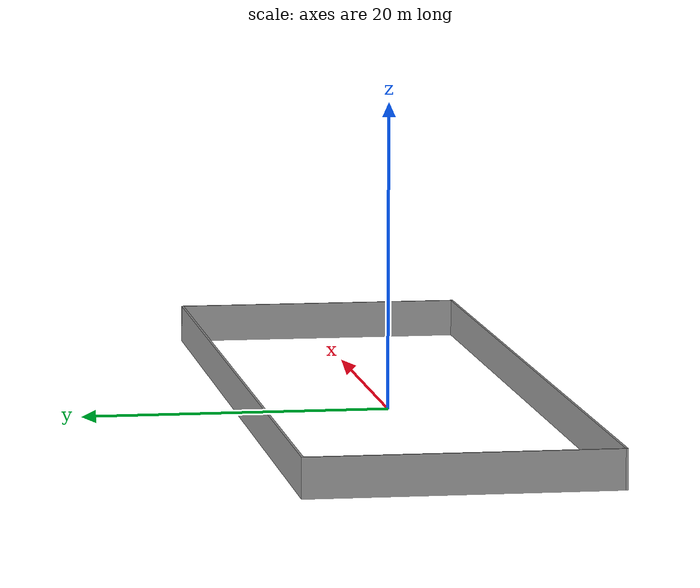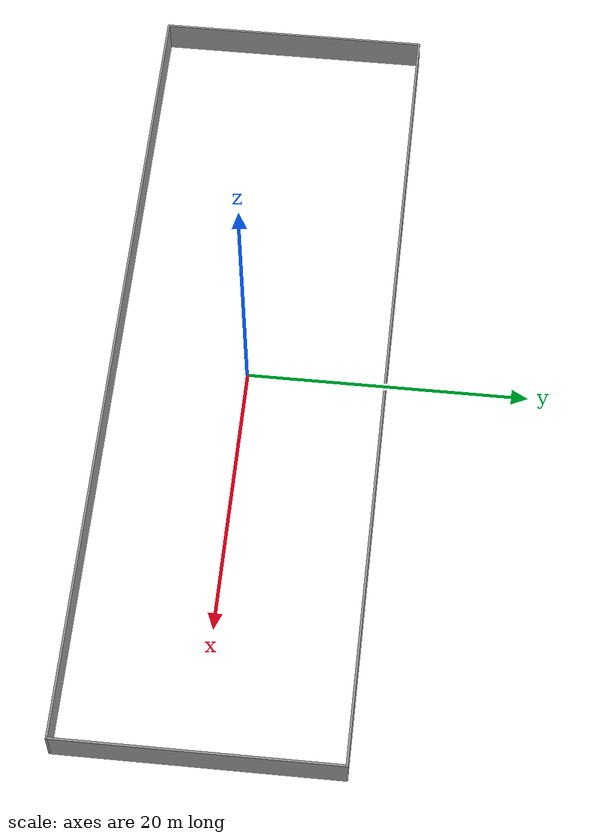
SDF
<?xml version='1.0'?>
<sdf version='1.7'>
  <model name='big_empty'>
    <pose>0.222829 0.216678 0 0 -0 0</pose>
    <link name='Wall_6'>
      <collision name='Wall_6_Collision'>
        <geometry>
          <box>
            <size>59.25 0.15 2.5</size>
          </box>
        </geometry>
        <pose>0 0 1.25 0 -0 0</pose>
      </collision>
      <visual name='Wall_6_Visual'>
        <pose>0 0 1.25 0 -0 0</pose>
        <geometry>
          <box>
            <size>59.25 0.15 2.5</size>
          </box>
        </geometry>
        <material>
          <script>
            <uri>file://media/materials/scripts/gazebo.material</uri>
            <name>Gazebo/Grey</name>
          </script>
          <ambient>1 1 1 1</ambient>
        </material>
        <meta>
          <layer>0</layer>
        </meta>
      </visual>
      <pose>-0 9.675 0 0 -0 0</pose>
    </link>
    <link name='Wall_7'>
      <collision name='Wall_7_Collision'>
        <geometry>
          <box>
            <size>19.5 0.15 2.5</size>
          </box>
        </geometry>
        <pose>0 0 1.25 0 -0 0</pose>
      </collision>
      <visual name='Wall_7_Visual'>
        <pose>0 0 1.25 0 -0 0</pose>
        <geometry>
          <box>
            <size>19.5 0.15 2.5</size>
          </box>
        </geometry>
        <material>
          <script>
            <uri>file://media/materials/scripts/gazebo.material</uri>
            <name>Gazebo/Grey</name>
          </script>
          <ambient>1 1 1 1</ambient>
        </material>
        <meta>
          <layer>0</layer>
        </meta>
      </visual>
      <pose>29.55 0 0 0 -0 -1.5708</pose>
    </link>
    <link name='Wall_8'>
      <collision name='Wall_8_Collision'>
        <geometry>
          <box>
            <size>59.25 0.15 2.5</size>
          </box>
        </geometry>
        <pose>0 0 1.25 0 -0 0</pose>
      </collision>
      <visual name='Wall_8_Visual'>
        <pose>0 0 1.25 0 -0 0</pose>
        <geometry>
          <box>
            <size>59.25 0.15 2.5</size>
          </box>
        </geometry>
        <material>
          <script>
            <uri>file://media/materials/scripts/gazebo.material</uri>
            <name>Gazebo/Grey</name>
          </script>
          <ambient>1 1 1 1</ambient>
        </material>
        <meta>
          <layer>0</layer>
        </meta>
      </visual>
      <pose>-0 -9.675 0 0 -0 3.14159</pose>
    </link>
    <link name='Wall_9'>
      <collision name='Wall_9_Collision'>
        <geometry>
          <box>
            <size>19.5 0.15 2.5</size>
          </box>
        </geometry>
        <pose>0 0 1.25 0 -0 0</pose>
      </collision>
      <visual name='Wall_9_Visual'>
        <pose>0 0 1.25 0 -0 0</pose>
        <geometry>
          <box>
            <size>19.5 0.15 2.5</size>
          </box>
        </geometry>
        <material>
          <script>
            <uri>file://media/materials/scripts/gazebo.material</uri>
            <name>Gazebo/Grey</name>
          </script>
          <ambient>1 1 1 1</ambient>
        </material>
        <meta>
          <layer>0</layer>
        </meta>
      </visual>
      <pose>-29.55 0 0 0 -0 1.5708</pose>
    </link>
    <static>1</static>
  </model>
</sdf>
